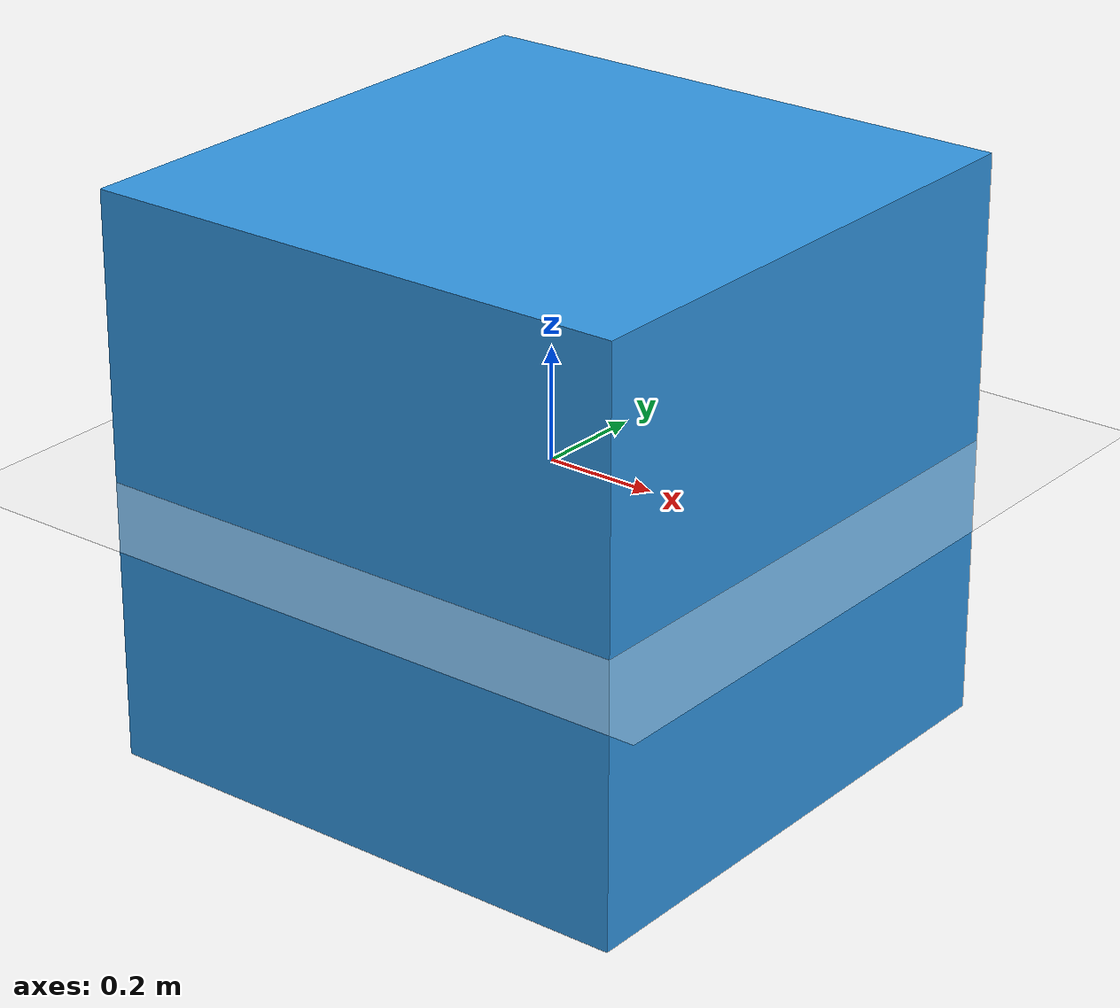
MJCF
<mujoco model="dex-gripper">
  <asset>
    <texture name="skybox" type="skybox" builtin="gradient" rgb1=".2 .3 .4" rgb2="0 0 0" width="800" height="800" mark="random" markrgb="1 1 1"/>
    <texture name="grid" type="2d" builtin="checker" rgb1=".2 .1 .2" rgb2=".3 .2 .3" width="300" height="300" mark="edge" markrgb=".3 .2 .3"/>
    <material name="grid" texture="grid" texrepeat="1 1" texuniform="true" reflectance=".2"/>
    <material name="self" rgba=".7 .5 .3 1"/>
  </asset>
  <visual>

    <headlight ambient=".4 .4 .4" diffuse=".8 .8 .8" specular="0.1 0.1 0.1"/>
    <map znear=".001"/>
    <quality shadowsize="16384"/>
  </visual>
  <compiler angle="degree" coordinate="global" inertiafromgeom="true"/>
  <option integrator="RK4" timestep="0.01" gravity="0 0 -8.0"/>
  <default>
    <joint armature="1" damping="1" limited="true"/>
    <geom conaffinity="0" condim="3" density="1000" friction="0.6 0.005 0.002" margin="0.01" rgba=".7 .5 .3 1"/>
  </default>
  <worldbody>
    <light cutoff="100" diffuse="1 1 1" dir="0.3 0 -1.3" directional="true" exponent="1" pos="-30 0 130" specular=".1 .1 .1"/>
    <geom conaffinity="1" condim="3" name="floor" pos="0 0 0" rgba="1 1 1 1" size="200 200 .125" type="plane" material="grid"/>
    <camera name="track" mode="fixed" pos="0 10 5" quat="0 0 0.547 0.892"/>
    <body name="0_1" pos="0 0 0">
      <geom name="torso_1" pos="0 0 0" size="0.25" type="sphere"/>
      <joint armature="0" damping="0" limited="false" margin="0.01" name="root_1" pos="0 0 0" type="free"/>

      <body name="1_1" pos="0 0 0">
        <joint axis="-0.707107 0.707107 0" name="1_joint_1" pos="0 0 0" range="-30 30" type="hinge"/>
        <geom fromto="0 0 0 0.4 0.4 0" size="0.08" type="capsule"/>
      </body>
      <body name="2_1" pos="0 0 0">
        <joint axis="-0.707107 -0.707107 0" name="2_joint_1" pos="0 0 0" range="-30 30" type="hinge"/>
        <geom fromto="0 0 0 -0.4 0.4 0" size="0.08" type="capsule"/>
      </body>
      <body name="3_1" pos="0 0 0">
        <joint axis="0.707107 -0.707107 0" name="3_joint_1" pos="0 0 0" range="-30 30" type="hinge"/>
        <geom fromto="0 0 0 -0.4 -0.4 0" size="0.08" type="capsule"/>
      </body>
      <body name="4_1" pos="0 0 0">
        <joint axis="0.707107 0.707107 0" name="4_joint_1" pos="0 0 0" range="-30 30" type="hinge"/>
        <geom fromto="0 0 0 0.4 -0.4 0" size="0.08" type="capsule"/>
      </body>
    </body>
    <body name="0_2" pos="0 0 0">
      <geom name="torso_2" pos="0 0 0" size="0.25" type="sphere"/>
      <joint armature="0" damping="0" limited="false" margin="0.01" name="root_2" pos="0 0 0" type="free"/>

      <body name="1_2" pos="0 0 0">
        <joint axis="-0.707107 0.707107 0" name="1_joint_2" pos="0 0 0" range="-30 30" type="hinge"/>
        <geom fromto="0 0 0 0.4 0.4 0" size="0.08" type="capsule"/>
      </body>
      <body name="2_2" pos="0 0 0">
        <joint axis="-0.707107 -0.707107 0" name="2_joint_2" pos="0 0 0" range="-30 30" type="hinge"/>
        <geom fromto="0 0 0 -0.4 0.4 0" size="0.08" type="capsule"/>
      </body>
      <body name="3_2" pos="0 0 0">
        <joint axis="0.707107 -0.707107 0" name="3_joint_2" pos="0 0 0" range="-30 30" type="hinge"/>
        <geom fromto="0 0 0 -0.4 -0.4 0" size="0.08" type="capsule"/>
      </body>
      <body name="4_2" pos="0 0 0">
        <joint axis="0.707107 0.707107 0" name="4_joint_2" pos="0 0 0" range="-30 30" type="hinge"/>
        <geom fromto="0 0 0 0.4 -0.4 0" size="0.08" type="capsule"/>
      </body>
    </body>
    <body name="box" pos="0 0 0">
      <freejoint name="box_joint"/>
      <geom name="box" type="box" size="0.5 0.5 0.5" rgba="0.2 0.6 0.9 1.0"
          contype="1" conaffinity="1" density="1" friction="0.6 0.005 0.002"/>
    </body>

  </worldbody>
  <actuator>
    <motor ctrllimited="true" ctrlrange="-1.0 1.0" joint="1_joint_1" gear="150" name="1_joint_1"/>
    <motor ctrllimited="true" ctrlrange="-1.0 1.0" joint="2_joint_1" gear="150" name="2_joint_1"/>
    <motor ctrllimited="true" ctrlrange="-1.0 1.0" joint="3_joint_1" gear="150" name="3_joint_1"/>
    <motor ctrllimited="true" ctrlrange="-1.0 1.0" joint="4_joint_1" gear="150" name="4_joint_1"/>
    <motor ctrllimited="true" ctrlrange="-1.0 1.0" joint="1_joint_2" gear="150" name="1_joint_2"/>
    <motor ctrllimited="true" ctrlrange="-1.0 1.0" joint="2_joint_2" gear="150" name="2_joint_2"/>
    <motor ctrllimited="true" ctrlrange="-1.0 1.0" joint="3_joint_2" gear="150" name="3_joint_2"/>
    <motor ctrllimited="true" ctrlrange="-1.0 1.0" joint="4_joint_2" gear="150" name="4_joint_2"/>
  </actuator>
</mujoco>
